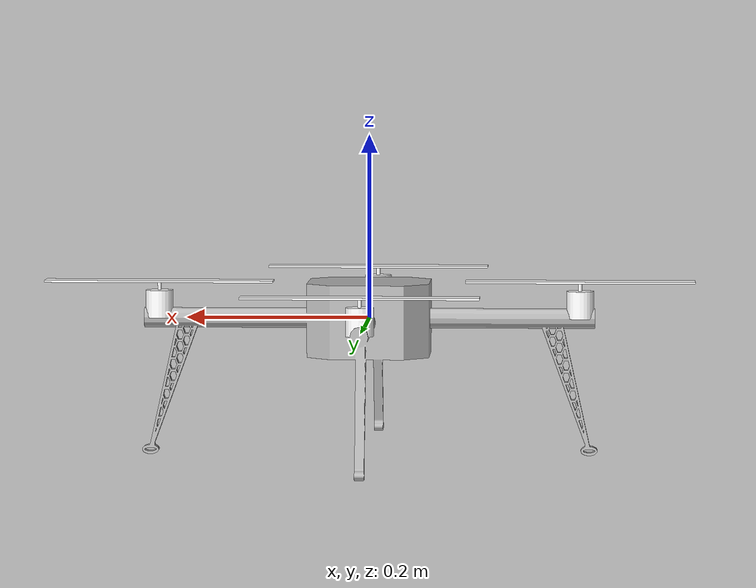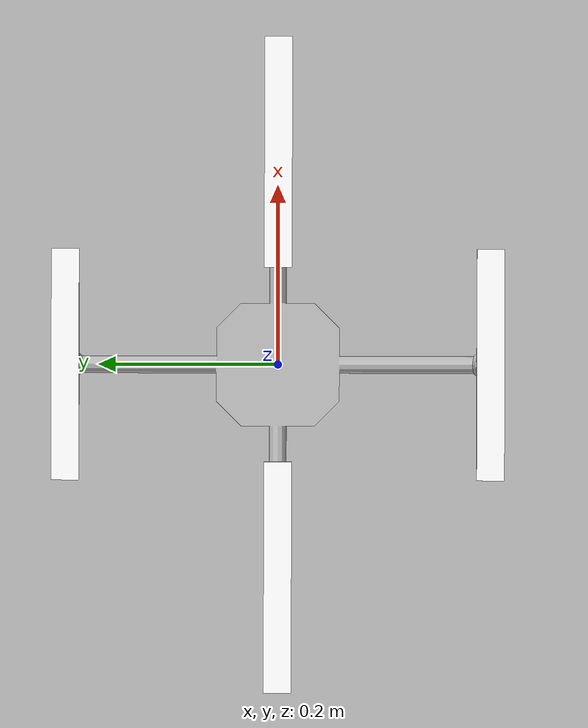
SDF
<?xml version="1.0" ?>
<sdf version="1.5">
  <model name="mrsim-quadrotor">
    <link name="base">
      <inertial>
        <mass>1.113</mass>
        <inertia>
          <ixx>0.015</ixx><ixy>0</ixy><ixz>0</ixz>
          <iyy>0.015</iyy><iyz>0</iyz>
          <izz>0.007</izz>
        </inertia>
        <pose> 0.01 0.005 0 </pose>
      </inertial>

      <collision name="base">
        <geometry>
          <mesh><uri>../../../../robots/meshes/quadrotor/drone_genom.obj</uri></mesh>
        </geometry>
      </collision>

      <visual name="body">
        <geometry>
          <mesh><uri>../../../../robots/meshes/quadrotor/drone_genom.obj</uri></mesh>
        </geometry>
      </visual>

    </link>

    <include>
      <uri>model://mrsim-rotor</uri>
      <name>rotor-1</name>
      <pose>0.23 0 0 0 0 0</pose>
    </include>
    <joint name="rotor-1" type="revolute">
      <parent>base</parent>
      <child>rotor-1::propeller</child>
      <axis><xyz>0 0 1</xyz></axis>
    </joint>

    <include>
      <uri>model://mrsim-rotor</uri>
      <name>rotor-2</name>
      <pose>0 0.23 0 0 0 0</pose>
    </include>
    <joint name="rotor-2" type="revolute">
      <parent>base</parent>
      <child>rotor-2::propeller</child>
      <axis><xyz>0 0 1</xyz></axis>
    </joint>

    <include>
      <uri>model://mrsim-rotor</uri>
      <name>rotor-3</name>
      <pose>-0.23 0 0 0 0 0</pose>
    </include>
    <joint name="rotor-3" type="revolute">
      <parent>base</parent>
      <child>rotor-3::propeller</child>
      <axis><xyz>0 0 1</xyz></axis>
    </joint>

    <include>
      <uri>model://mrsim-rotor</uri>
      <name>rotor-4</name>
      <pose>0 -0.23 0 0 0 0</pose>
    </include>
    <joint name="rotor-4" type="revolute">
      <parent>base</parent>
      <child>rotor-4::propeller</child>
      <axis><xyz>0 0 1</xyz></axis>
    </joint>

    <plugin name="mrsim" filename="mrsim-gazebo.so">
      <link>base</link>
      <rotors>
        <noise>0.0001</noise>
        <cf>5.9e-4</cf>
        <ct>1e-5</ct>
        <rotor><joint spin="cw">rotor-1</joint></rotor>
        <rotor><joint spin="ccw">rotor-2</joint></rotor>
        <rotor><joint spin="cw">rotor-3</joint></rotor>
        <rotor><joint spin="ccw">rotor-4</joint></rotor>
      </rotors>
    </plugin>

    <plugin name='3dplot' filename='libLinkPlot3DPlugin.so'>
      <frequency>100</frequency>
      <plot>
        <link>base</link>
        <pose>0.0 0.0 0.0 0 0 0</pose> <!-- perche: 0.3535534483629909 0.3535534483629909 -0.0884 0 0 0 -->
        <material>Gazebo/Blue</material>
      </plot>
    </plugin>

  </model>
</sdf>

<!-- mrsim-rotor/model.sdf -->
<sdf version="1.5">
  <model name="mrsim-rotor">
    <link name="propeller">
      <gravity>0</gravity>
      <inertial>
        <mass>0.036</mass>
        <inertia>
          <ixx>4e-5</ixx><ixy>0</ixy><ixz>0</ixz>
          <iyy>4e-5</iyy><iyz>0</iyz>
          <izz>8e-5</izz>
        </inertia>
      </inertial>

      <collision name="collision">
        <pose>0 0 0.04 0 0 0</pose>
        <geometry>
          <cylinder><radius>0.127</radius><length>0.002</length></cylinder>
        </geometry>
      </collision>

      <visual name="motor">
        <pose>0 0 0.015 0 0 0</pose>
        <geometry>
          <cylinder><radius>0.015</radius><length>0.03</length></cylinder>
        </geometry>
        <material>
          <ambient>0.1 0.1 0.1 1</ambient>
          <diffuse>1.0 1.0 1.0 1</diffuse>
        </material>
      </visual>

      <visual name="axle">
        <pose>0 0 0.035 0 0 0</pose>
        <geometry>
          <cylinder><radius>0.002</radius><length>0.01</length></cylinder>
        </geometry>
        <material>
          <ambient>0.1 0.1 0.1 1</ambient>
          <diffuse>1.0 1.0 1.0 1</diffuse>
        </material>
      </visual>

      <visual name="blade">
        <pose>0 0 0.04 0 0 0</pose>
        <geometry>
          <box><size>0.25 0.03 0.002</size></box>
        </geometry>
        <material>
          <ambient>0.1 0.1 0.1 1</ambient>
          <diffuse>1.0 1.0 1.0 1</diffuse>
        </material>
      </visual>
    </link>
  </model>
</sdf>
